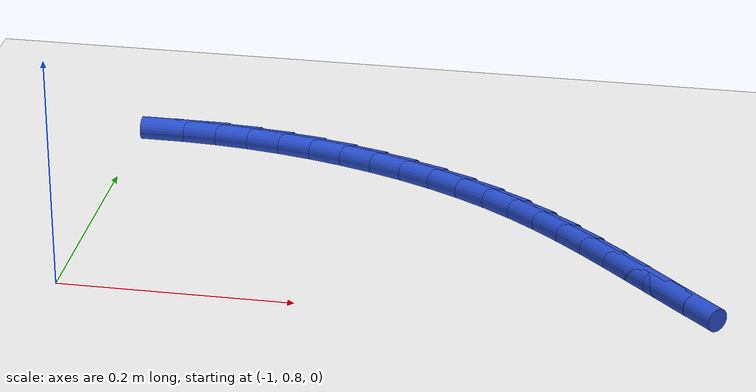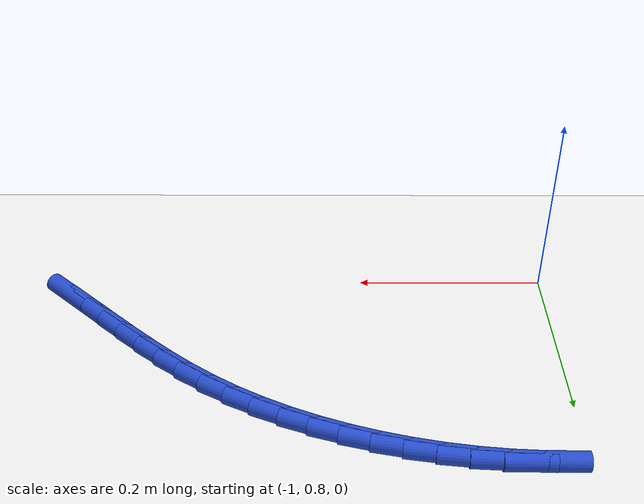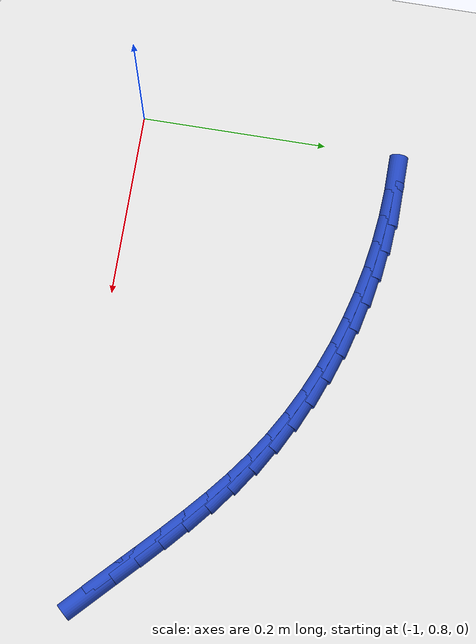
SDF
<sdf version="1.6">
 <world name="default">
  <model name="ground_plane">
   <static>1</static>
   <link name="link">
    <collision name="collision">
     <geometry><plane><normal>0 0 1</normal><size>100 100</size></plane></geometry>
     <surface><friction><ode><mu>100</mu><mu2>50</mu2></ode></friction></surface>
    </collision>
    <visual name="visual">
     <cast_shadows>0</cast_shadows>
     <geometry><plane><normal>0 0 1</normal><size>100 100</size></plane></geometry>
     <material>
      <script><uri>file://media/materials/scripts/gazebo.material</uri><name>Gazebo/WhiteGlow</name></script>
     </material>
    </visual>
   </link>
  </model>
  <model name="line">
   <link name="link_34">
    <pose>-0.4875102850215278 0.8400551325618261 0.01 0 1.57 -0.7617245559441463</pose>
    <collision name="collision">
     <geometry><cylinder><radius>0.01</radius><length>0.08</length></cylinder></geometry>
    </collision>
    <visual name="visual">
     <material>
      <script><name>Gazebo/Blue</name><uri>file://media/materials/scripts/gazebo.material</uri></script>
     </material>
     <geometry><cylinder><radius>0.01</radius><length>0.08</length></cylinder></geometry>
    </visual>
   </link>
   <link name="link_35">
    <pose>-0.5093172026539136 0.8608532469263432 0.01 0 1.57 -0.767667490933275</pose>
    <collision name="collision">
     <geometry><cylinder><radius>0.01</radius><length>0.08</length></cylinder></geometry>
    </collision>
    <visual name="visual">
     <material>
      <script><name>Gazebo/Blue</name><uri>file://media/materials/scripts/gazebo.material</uri></script>
     </material>
     <geometry><cylinder><radius>0.01</radius><length>0.08</length></cylinder></geometry>
    </visual>
   </link>
   <link name="link_36">
    <pose>-0.5309571116672123 0.881739067139117 0.01 0 1.57 -0.7632309427519988</pose>
    <collision name="collision">
     <geometry><cylinder><radius>0.01</radius><length>0.08</length></cylinder></geometry>
    </collision>
    <visual name="visual">
     <material>
      <script><name>Gazebo/Blue</name><uri>file://media/materials/scripts/gazebo.material</uri></script>
     </material>
     <geometry><cylinder><radius>0.01</radius><length>0.08</length></cylinder></geometry>
    </visual>
   </link>
   <link name="link_37">
    <pose>-0.5526366076778138 0.902478108035541 0.01 0 1.57 -0.7483343949049049</pose>
    <collision name="collision">
     <geometry><cylinder><radius>0.01</radius><length>0.08</length></cylinder></geometry>
    </collision>
    <visual name="visual">
     <material>
      <script><name>Gazebo/Blue</name><uri>file://media/materials/scripts/gazebo.material</uri></script>
     </material>
     <geometry><cylinder><radius>0.01</radius><length>0.08</length></cylinder></geometry>
    </visual>
   </link>
   <link name="link_38">
    <pose>-0.5745622863021078 0.9228358844510085 0.01 0 1.57 -0.7228871260414993</pose>
    <collision name="collision">
     <geometry><cylinder><radius>0.01</radius><length>0.08</length></cylinder></geometry>
    </collision>
    <visual name="visual">
     <material>
      <script><name>Gazebo/Blue</name><uri>file://media/materials/scripts/gazebo.material</uri></script>
     </material>
     <geometry><cylinder><radius>0.01</radius><length>0.08</length></cylinder></geometry>
    </visual>
   </link>
   <link name="link_39">
    <pose>-0.5969407431564845 0.9425779112209136 0.01 0 1.57 -0.6868376550283946</pose>
    <collision name="collision">
     <geometry><cylinder><radius>0.01</radius><length>0.08</length></cylinder></geometry>
    </collision>
    <visual name="visual">
     <material>
      <script><name>Gazebo/Blue</name><uri>file://media/materials/scripts/gazebo.material</uri></script>
     </material>
     <geometry><cylinder><radius>0.01</radius><length>0.08</length></cylinder></geometry>
    </visual>
   </link>
   <link name="link_40">
    <pose>-0.6199785738573335 0.9614697031806507 0.01 0 1.57 -0.64025954629374</pose>
    <collision name="collision">
     <geometry><cylinder><radius>0.01</radius><length>0.08</length></cylinder></geometry>
    </collision>
    <visual name="visual">
     <material>
      <script><name>Gazebo/Blue</name><uri>file://media/materials/scripts/gazebo.material</uri></script>
     </material>
     <geometry><cylinder><radius>0.01</radius><length>0.08</length></cylinder></geometry>
    </visual>
   </link>
   <link name="link_41">
    <pose>-0.6438823740210443 0.9792767751656118 0.01 0 1.57 -0.5839731546389376</pose>
    <collision name="collision">
     <geometry><cylinder><radius>0.01</radius><length>0.08</length></cylinder></geometry>
    </collision>
    <visual name="visual">
     <material>
      <script><name>Gazebo/Blue</name><uri>file://media/materials/scripts/gazebo.material</uri></script>
     </material>
     <geometry><cylinder><radius>0.01</radius><length>0.08</length></cylinder></geometry>
    </visual>
   </link>
   <link name="link_42">
    <pose>-0.6688451532940108 0.995773725241336 0.01 0 1.57 -0.5251536760143889</pose>
    <collision name="collision">
     <geometry><cylinder><radius>0.01</radius><length>0.08</length></cylinder></geometry>
    </collision>
    <visual name="visual">
     <material>
      <script><name>Gazebo/Blue</name><uri>file://media/materials/scripts/gazebo.material</uri></script>
     </material>
     <geometry><cylinder><radius>0.01</radius><length>0.08</length></cylinder></geometry>
    </visual>
   </link>
   <link name="link_43">
    <pose>-0.6948771692671671 1.0108573347977479 0.01 0 1.57 -0.468505167271352</pose>
    <collision name="collision">
     <geometry><cylinder><radius>0.01</radius><length>0.08</length></cylinder></geometry>
    </collision>
    <visual name="visual">
     <material>
      <script><name>Gazebo/Blue</name><uri>file://media/materials/scripts/gazebo.material</uri></script>
     </material>
     <geometry><cylinder><radius>0.01</radius><length>0.08</length></cylinder></geometry>
    </visual>
   </link>
   <link name="link_44">
    <pose>-0.7218578107339338 1.0245118807371931 0.01 0 1.57 -0.4138168235199364</pose>
    <collision name="collision">
     <geometry><cylinder><radius>0.01</radius><length>0.08</length></cylinder></geometry>
    </collision>
    <visual name="visual">
     <material>
      <script><name>Gazebo/Blue</name><uri>file://media/materials/scripts/gazebo.material</uri></script>
     </material>
     <geometry><cylinder><radius>0.01</radius><length>0.08</length></cylinder></geometry>
    </visual>
   </link>
   <link name="link_45">
    <pose>-0.7496636212663554 1.0367235422038583 0.01 0 1.57 -0.3607569520621443</pose>
    <collision name="collision">
     <geometry><cylinder><radius>0.01</radius><length>0.08</length></cylinder></geometry>
    </collision>
    <visual name="visual">
     <material>
      <script><name>Gazebo/Blue</name><uri>file://media/materials/scripts/gazebo.material</uri></script>
     </material>
     <geometry><cylinder><radius>0.01</radius><length>0.08</length></cylinder></geometry>
    </visual>
   </link>
   <link name="link_46">
    <pose>-0.778171144436476 1.0474784983419307 0.01 0 1.57 -0.3089848614489075</pose>
    <collision name="collision">
     <geometry><cylinder><radius>0.01</radius><length>0.08</length></cylinder></geometry>
    </collision>
    <visual name="visual">
     <material>
      <script><name>Gazebo/Blue</name><uri>file://media/materials/scripts/gazebo.material</uri></script>
     </material>
     <geometry><cylinder><radius>0.01</radius><length>0.08</length></cylinder></geometry>
    </visual>
   </link>
   <link name="link_47">
    <pose>-0.8072569238163396 1.0567629282955966 0.01 0 1.57 -0.2581544715538874</pose>
    <collision name="collision">
     <geometry><cylinder><radius>0.01</radius><length>0.08</length></cylinder></geometry>
    </collision>
    <visual name="visual">
     <material>
      <script><name>Gazebo/Blue</name><uri>file://media/materials/scripts/gazebo.material</uri></script>
     </material>
     <geometry><cylinder><radius>0.01</radius><length>0.08</length></cylinder></geometry>
    </visual>
   </link>
   <link name="link_48">
    <pose>-0.8367975029779905 1.0645630112090427 0.01 0 1.57 -0.2079157711107662</pose>
    <collision name="collision">
     <geometry><cylinder><radius>0.01</radius><length>0.08</length></cylinder></geometry>
    </collision>
    <visual name="visual">
     <material>
      <script><name>Gazebo/Blue</name><uri>file://media/materials/scripts/gazebo.material</uri></script>
     </material>
     <geometry><cylinder><radius>0.01</radius><length>0.08</length></cylinder></geometry>
    </visual>
   </link>
   <link name="link_49">
    <pose>-0.8666694254934733 1.070864926226456 0.01 0 1.57 -0.15791470929435678</pose>
    <collision name="collision">
     <geometry><cylinder><radius>0.01</radius><length>0.08</length></cylinder></geometry>
    </collision>
    <visual name="visual">
     <material>
      <script><name>Gazebo/Blue</name><uri>file://media/materials/scripts/gazebo.material</uri></script>
     </material>
     <geometry><cylinder><radius>0.01</radius><length>0.08</length></cylinder></geometry>
    </visual>
   </link>
   <link name="link_50">
    <pose>-0.8967492349348317 1.0756548524920237 0.01 0 1.57 -0.10779203466109578</pose>
    <collision name="collision">
     <geometry><cylinder><radius>0.01</radius><length>0.08</length></cylinder></geometry>
    </collision>
    <visual name="visual">
     <material>
      <script><name>Gazebo/Blue</name><uri>file://media/materials/scripts/gazebo.material</uri></script>
     </material>
     <geometry><cylinder><radius>0.01</radius><length>0.08</length></cylinder></geometry>
    </visual>
   </link>
   <link name="link_51">
    <pose>-0.92691347487411 1.0789189691499321 0.01 0 1.57 -0.05718154400220344</pose>
    <collision name="collision">
     <geometry><cylinder><radius>0.01</radius><length>0.08</length></cylinder></geometry>
    </collision>
    <visual name="visual">
     <material>
      <script><name>Gazebo/Blue</name><uri>file://media/materials/scripts/gazebo.material</uri></script>
     </material>
     <geometry><cylinder><radius>0.01</radius><length>0.08</length></cylinder></geometry>
    </visual>
   </link>
   <link name="link_52">
    <pose>-0.9570386888833529 1.0806434553443682 0.01 0 1.57 -0.006690251038141633</pose>
    <collision name="collision">
     <geometry><cylinder><radius>0.01</radius><length>0.08</length></cylinder></geometry>
    </collision>
    <visual name="visual">
     <material>
      <script><name>Gazebo/Blue</name><uri>file://media/materials/scripts/gazebo.material</uri></script>
     </material>
     <geometry><cylinder><radius>0.01</radius><length>0.08</length></cylinder></geometry>
    </visual>
   </link>
  </model>
 </world>
</sdf>
